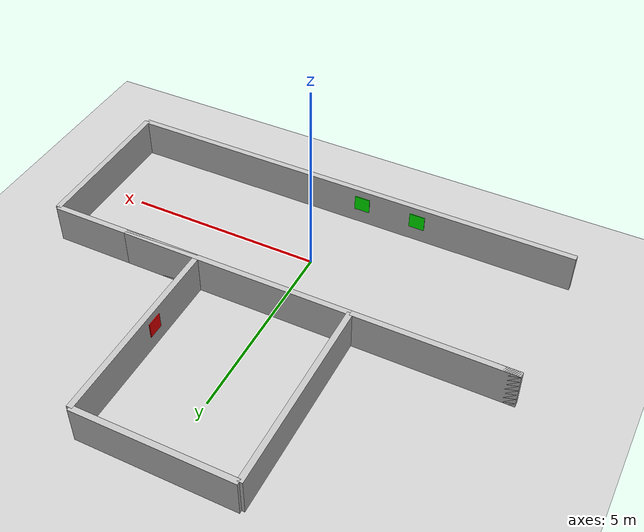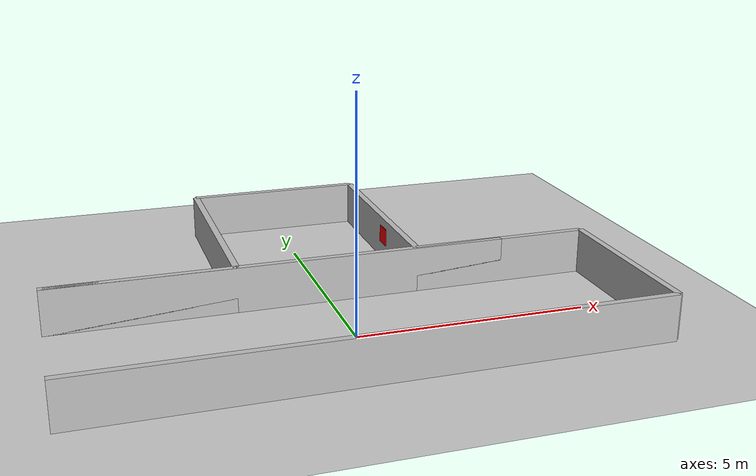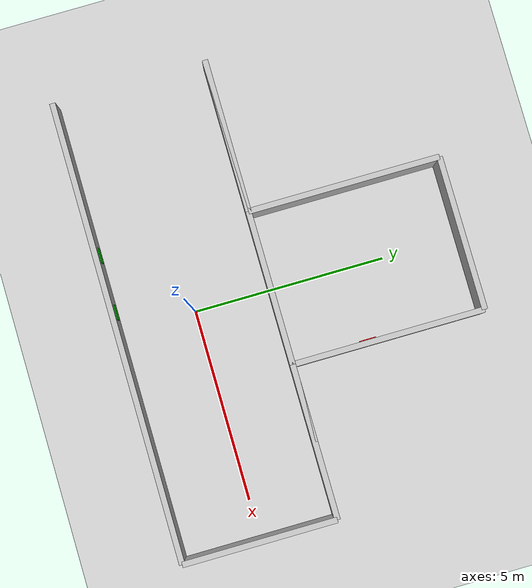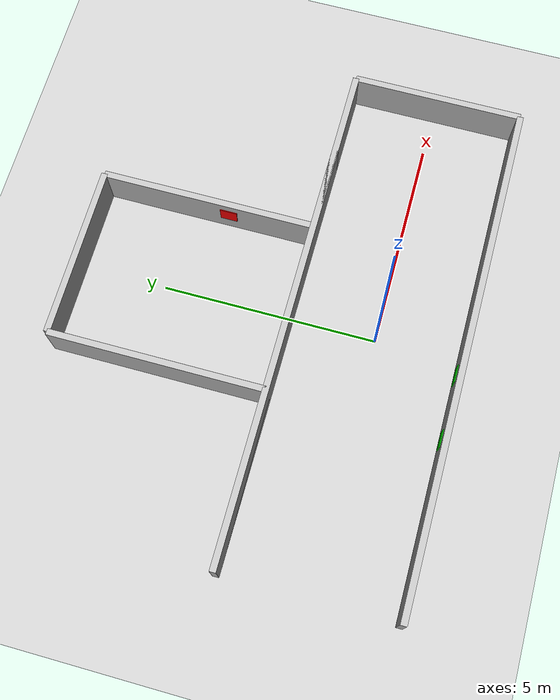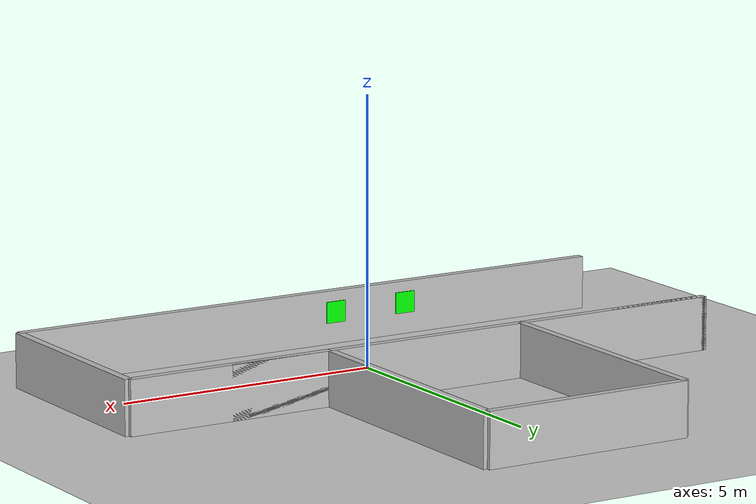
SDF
<sdf version="1.6">
 <world name="campus_corridor">
  <physics type="ode">
   <max_step_size>0.001</max_step_size>
   <real_time_factor>1.0</real_time_factor>
   <real_time_update_rate>1000</real_time_update_rate>
  </physics>
  <include><uri>model://sun</uri></include>
  <include><uri>model://ground_plane</uri></include>
  <light name="ambient_light" type="directional">
   <pose>0 0 10 0 0 0</pose>
   <diffuse>0.5 0.5 0.5 1</diffuse>
   <specular>0.1 0.1 0.1 1</specular>
   <attenuation>
    <range>100</range>
    <constant>0.9</constant>
    <linear>0.01</linear>
    <quadratic>0.001</quadratic>
   </attenuation>
   <direction>0.1 0.1 -0.9</direction>
   <cast_shadows>false</cast_shadows>
  </light>
  <model name="main_left_wall_1">
   <static>true</static>
   <pose>-1 2 0.5 0 0 0</pose>
   <link name="link">
    <collision name="collision"><geometry><box><size>10 0.15 1.0</size></box></geometry></collision>
    <visual name="visual">
     <geometry><box><size>10 0.15 1.0</size></box></geometry>
     <material><ambient>0.75 0.75 0.75 1</ambient><diffuse>0.75 0.75 0.75 1</diffuse></material>
    </visual>
   </link>
  </model>
  <model name="main_left_wall_seg1">
   <static>true</static>
   <pose>-4 2 0.5 0 0 0</pose>
   <link name="link">
    <collision name="collision"><geometry><box><size>4 0.15 1.0</size></box></geometry></collision>
    <visual name="visual">
     <geometry><box><size>4 0.15 1.0</size></box></geometry>
     <material><ambient>0.75 0.75 0.75 1</ambient><diffuse>0.75 0.75 0.75 1</diffuse></material>
    </visual>
   </link>
  </model>
  <model name="main_left_wall_seg2">
   <static>true</static>
   <pose>4 2 0.5 0 0 0</pose>
   <link name="link">
    <collision name="collision"><geometry><box><size>4 0.15 1.0</size></box></geometry></collision>
    <visual name="visual">
     <geometry><box><size>4 0.15 1.0</size></box></geometry>
     <material><ambient>0.75 0.75 0.75 1</ambient><diffuse>0.75 0.75 0.75 1</diffuse></material>
    </visual>
   </link>
  </model>
  <model name="main_right_wall">
   <static>true</static>
   <pose>0 -2 0.5 0 0 0</pose>
   <link name="link">
    <collision name="collision"><geometry><box><size>12 0.15 1.0</size></box></geometry></collision>
    <visual name="visual">
     <geometry><box><size>12 0.15 1.0</size></box></geometry>
     <material><ambient>0.75 0.75 0.75 1</ambient><diffuse>0.75 0.75 0.75 1</diffuse></material>
    </visual>
   </link>
  </model>
  <model name="main_end_wall">
   <static>true</static>
   <pose>6 0 0.5 0 0 0</pose>
   <link name="link">
    <collision name="collision"><geometry><box><size>0.15 4 1.0</size></box></geometry></collision>
    <visual name="visual">
     <geometry><box><size>0.15 4 1.0</size></box></geometry>
     <material><ambient>0.75 0.75 0.75 1</ambient><diffuse>0.75 0.75 0.75 1</diffuse></material>
    </visual>
   </link>
  </model>
  <model name="branch_left_wall">
   <static>true</static>
   <pose>-2 4.5 0.5 0 0 0</pose>
   <link name="link">
    <collision name="collision"><geometry><box><size>0.15 5 1.0</size></box></geometry></collision>
    <visual name="visual">
     <geometry><box><size>0.15 5 1.0</size></box></geometry>
     <material><ambient>0.75 0.75 0.75 1</ambient><diffuse>0.75 0.75 0.75 1</diffuse></material>
    </visual>
   </link>
  </model>
  <model name="branch_right_wall">
   <static>true</static>
   <pose>2 4.5 0.5 0 0 0</pose>
   <link name="link">
    <collision name="collision"><geometry><box><size>0.15 5 1.0</size></box></geometry></collision>
    <visual name="visual">
     <geometry><box><size>0.15 5 1.0</size></box></geometry>
     <material><ambient>0.75 0.75 0.75 1</ambient><diffuse>0.75 0.75 0.75 1</diffuse></material>
    </visual>
   </link>
  </model>
  <model name="branch_end_wall">
   <static>true</static>
   <pose>0 7 0.5 0 0 0</pose>
   <link name="link">
    <collision name="collision"><geometry><box><size>4 0.15 1.0</size></box></geometry></collision>
    <visual name="visual">
     <geometry><box><size>4 0.15 1.0</size></box></geometry>
     <material><ambient>0.75 0.75 0.75 1</ambient><diffuse>0.75 0.75 0.75 1</diffuse></material>
    </visual>
   </link>
  </model>
  <model name="green_marker_1">
   <static>true</static>
   <pose>-2 -1.91 0.6 0 0 0</pose>
   <link name="link">
    <collision name="collision"><geometry><box><size>0.4 0.02 0.4</size></box></geometry></collision>
    <visual name="visual">
     <geometry><box><size>0.4 0.02 0.4</size></box></geometry>
     <material><ambient>0 1 0 1</ambient><diffuse>0 1 0 1</diffuse></material>
    </visual>
   </link>
  </model>
  <model name="green_marker_2">
   <static>true</static>
   <pose>-0.5 -1.91 0.6 0 0 0</pose>
   <link name="link">
    <collision name="collision"><geometry><box><size>0.4 0.02 0.4</size></box></geometry></collision>
    <visual name="visual">
     <geometry><box><size>0.4 0.02 0.4</size></box></geometry>
     <material><ambient>0 1 0 1</ambient><diffuse>0 1 0 1</diffuse></material>
    </visual>
   </link>
  </model>
  <model name="red_marker">
   <static>true</static>
   <pose>1.91 4 0.6 0 0 0</pose>
   <link name="link">
    <collision name="collision"><geometry><box><size>0.02 0.4 0.4</size></box></geometry></collision>
    <visual name="visual">
     <geometry><box><size>0.02 0.4 0.4</size></box></geometry>
     <material><ambient>1 0 0 1</ambient><diffuse>1 0 0 1</diffuse></material>
    </visual>
   </link>
  </model>
 </world>
</sdf>
